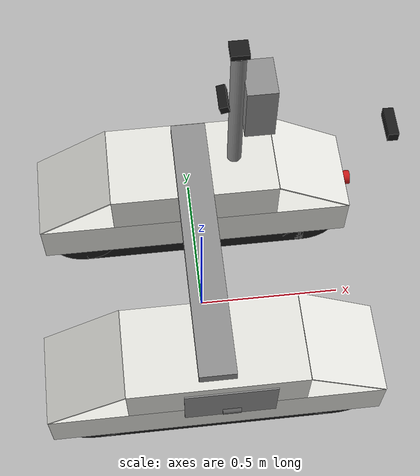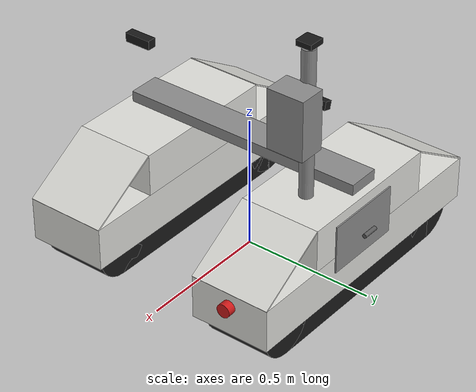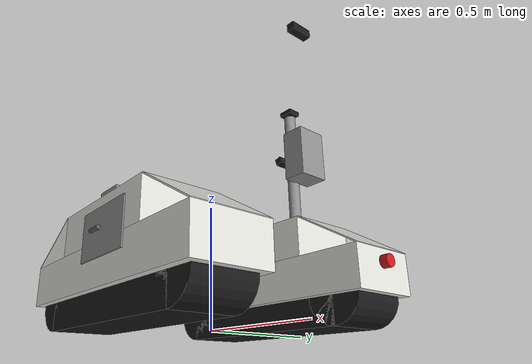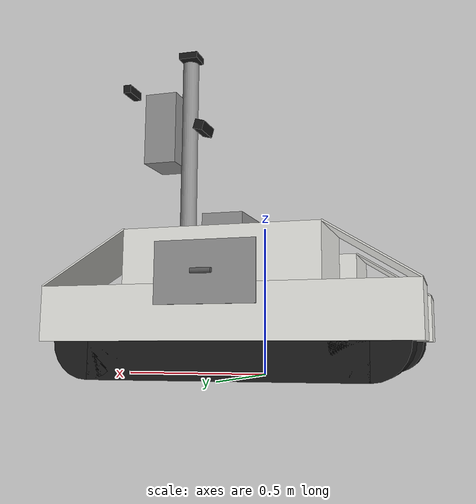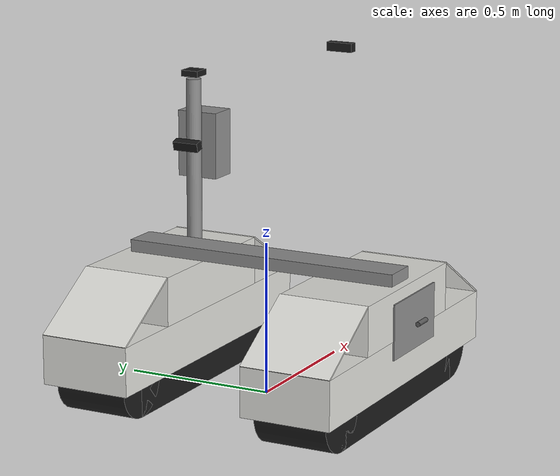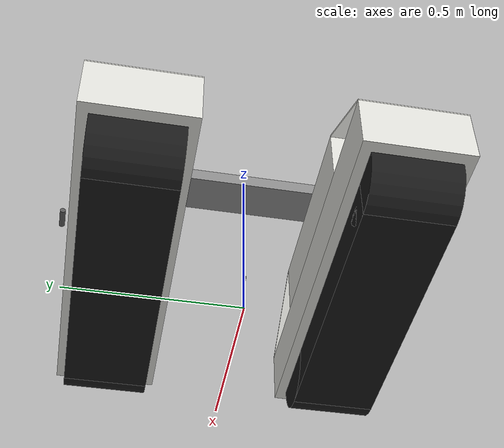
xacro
<?xml version="1.0"?>
<robot xmlns:xacro="http://www.ros.org/wiki/xacro" name="amiga_ng">

  <!-- ── Track / chassis dimensions (RTU.V4) ── -->
  <xacro:property name="track_length"   value="1.035"/>    <!-- ground contact length -->
  <xacro:property name="track_width"    value="0.242"/>    <!-- each track contact width -->
  <xacro:property name="track_height"   value="0.22"/>     <!-- track unit vertical extent -->
  <xacro:property name="drive_radius"   value="0.11"/>     <!-- track roller radius (drive frame) -->

  <!-- Track centre-to-centre spacing (body width minus one track width) -->
  <xacro:property name="track_sep"      value="0.698"/>
  <xacro:property name="track_half"     value="${track_sep/2}"/>

  <!-- base_link sits at the track roller axle height -->
  <xacro:property name="base_link_z"    value="${drive_radius}"/>

  <!-- ── Side body pods (two boxes, one above each track) ── -->
  <xacro:property name="pod_len"        value="1.10"/>
  <xacro:property name="pod_wid"        value="0.30"/>
  <xacro:property name="pod_h"          value="0.32"/>
  <!-- pod inner face roughly above the track; centre offset = track_half -->
  <xacro:property name="pod_y"          value="${track_half}"/>
  <!-- pod centre: body extends down so its base reaches the track axle centre
       (base_link z=0), giving the drive/idler axles something to attach to -->
  <xacro:property name="pod_z"          value="0.16"/>

  <!-- ── Transverse top frame joining the pods ── -->
  <xacro:property name="frame_wid"      value="0.94"/>
  <xacro:property name="frame_len"      value="0.12"/>
  <xacro:property name="frame_h"        value="0.04"/>

  <!-- ── Mast (vertical post carrying GPS / comms / e-stop) ── -->
  <xacro:property name="mast_h"         value="0.55"/>
  <xacro:property name="mast_r"         value="0.025"/>

  <!-- ── Materials ── -->
  <material name="amiga_green">  <color rgba="0.18 0.42 0.18 1.0"/> </material>
  <material name="white">        <color rgba="0.88 0.88 0.86 1.0"/> </material>
  <material name="black">        <color rgba="0.10 0.10 0.10 1.0"/> </material>
  <material name="grey">         <color rgba="0.55 0.55 0.55 1.0"/> </material>
  <material name="darkgrey">     <color rgba="0.35 0.35 0.35 1.0"/> </material>
  <material name="orange">       <color rgba="1.00 0.50 0.00 1.0"/> </material>
  <material name="red">          <color rgba="0.80 0.10 0.10 1.0"/> </material>

  <link name="base_footprint"/>

  <link name="base_link">
    <visual>
      <origin xyz="0 0 0" rpy="0 0 0"/>
      <geometry> <box size="0.01 0.01 0.01"/> </geometry>
      <material name="black"/>
    </visual>
    <inertial>
      <mass value="5.0"/>
      <inertia ixx="0.5" ixy="0" ixz="0" iyy="1.0" iyz="0" izz="1.0"/>
    </inertial>
  </link>

  <joint name="base_footprint_joint" type="fixed">
    <parent link="base_footprint"/>
    <child  link="base_link"/>
    <origin xyz="0 0 ${base_link_z}" rpy="0 0 0"/>
  </joint>

  <xacro:macro name="track" params="prefix y axis_y">
    <link name="${prefix}_track_link">
      <visual>
        <origin xyz="0 0 0" rpy="0 0 0"/>
        <geometry> <box size="${track_length - 2*drive_radius} ${track_width} ${track_height}"/> </geometry>
        <material name="black"/>
      </visual>
      <collision>
        <origin xyz="0 0 0" rpy="0 0 0"/>
        <geometry> <box size="${track_length - 2*drive_radius} ${track_width} ${track_height}"/> </geometry>
        <surface>
          <friction>
            <ode>
              <mu>0.7</mu>
              <mu2>150</mu2>
              <fdir1>0 1 0</fdir1>
              <slip1>0.0</slip1>
              <slip2>0.0</slip2>
            </ode>
          </friction>
        </surface>
      </collision>
      <inertial>
        <mass value="18.0"/>
        <inertia ixx="0.8" ixy="0" ixz="0" iyy="2.0" iyz="0" izz="2.0"/>
      </inertial>
    </link>
    <joint name="${prefix}_track_joint" type="fixed">
      <parent link="base_link"/>
      <child  link="${prefix}_track_link"/>
      <origin xyz="0 ${y} 0" rpy="0 0 0"/>
    </joint>

    <!-- Drive roller (front) — full track height; forms the rounded front end -->
    <link name="${prefix}_drive_link">
      <visual>
        <origin xyz="0 0 0" rpy="${pi/2} 0 0"/>
        <geometry> <cylinder radius="${track_height/2}" length="${track_width}"/> </geometry>
        <material name="black"/>
      </visual>
      <collision>
        <origin xyz="0 0 0" rpy="${pi/2} 0 0"/>
        <geometry> <cylinder radius="${track_height/2}" length="${track_width}"/> </geometry>
      </collision>
      <inertial>
        <mass value="4.0"/>
        <inertia ixx="0.05" ixy="0" ixz="0" iyy="0.05" iyz="0" izz="0.05"/>
      </inertial>
    </link>
    <joint name="${prefix}_drive_joint" type="continuous">
      <parent link="base_link"/>
      <child  link="${prefix}_drive_link"/>
      <origin xyz="${track_length/2 - drive_radius} ${y} 0" rpy="0 0 0"/>
      <axis xyz="0 ${axis_y} 0"/>
    </joint>

    <!-- Idler roller (rear) — full track height; forms the rounded rear end -->
    <link name="${prefix}_idler_link">
      <visual>
        <origin xyz="0 0 0" rpy="${pi/2} 0 0"/>
        <geometry> <cylinder radius="${track_height/2}" length="${track_width}"/> </geometry>
        <material name="black"/>
      </visual>
      <inertial>
        <mass value="4.0"/>
        <inertia ixx="0.05" ixy="0" ixz="0" iyy="0.05" iyz="0" izz="0.05"/>
      </inertial>
    </link>
    <joint name="${prefix}_idler_joint" type="continuous">
      <parent link="base_link"/>
      <child  link="${prefix}_idler_link"/>
      <origin xyz="-${track_length/2 - drive_radius} ${y} 0" rpy="0 0 0"/>
      <axis xyz="0 ${axis_y} 0"/>
    </joint>
  </xacro:macro>

  <xacro:track prefix="left"  y=" ${track_half}" axis_y=" 1"/>
  <xacro:track prefix="right" y="-${track_half}" axis_y="-1"/>

  <gazebo reference="left_track_joint">
    <preserveFixedJoint>true</preserveFixedJoint>
  </gazebo>
  <gazebo reference="right_track_joint">
    <preserveFixedJoint>true</preserveFixedJoint>
  </gazebo>

  <gazebo reference="left_track_link">
    <mu1>0.9</mu1>
    <mu2>0.9</mu2>
  </gazebo>
  <gazebo reference="right_track_link">
    <mu1>0.9</mu1>
    <mu2>0.9</mu2>
  </gazebo>

  <xacro:macro name="pod" params="prefix y face">
    <link name="${prefix}_pod_link">
      <!-- lower vertical box (full length) -->
      <visual>
        <origin xyz="0 0 -0.08" rpy="0 0 0"/>
        <geometry> <box size="${pod_len} ${pod_wid} 0.16"/> </geometry>
        <material name="white"/>
      </visual>
      <!-- upper central box (top length) -->
      <visual>
        <origin xyz="0 0 0.08" rpy="0 0 0"/>
        <geometry> <box size="0.58 ${pod_wid} 0.16"/> </geometry>
        <material name="white"/>
      </visual>
      <!-- front upper slant face (shoulder up to top) -->
      <visual>
        <origin xyz="0.42 0 0.08" rpy="0 0.5517 0"/>
        <geometry> <box size="0.3053 ${pod_wid} 0.005"/> </geometry>
        <material name="white"/>
      </visual>
      <!-- rear upper slant face -->
      <visual>
        <origin xyz="-0.42 0 0.08" rpy="0 -0.5517 0"/>
        <geometry> <box size="0.3053 ${pod_wid} 0.005"/> </geometry>
        <material name="white"/>
      </visual>

      <visual>
        <origin xyz="0.04 ${face} 0.03" rpy="0 0 0"/>
        <geometry> <box size="0.30 0.006 0.18"/> </geometry>
        <material name="grey"/>
      </visual>
      <!-- handle: small grab bar standing off the hatch -->
      <visual>
        <origin xyz="0.04 ${face*1.18} 0.03" rpy="0 1.5708 0"/>
        <geometry> <cylinder radius="0.008" length="0.06"/> </geometry>
        <material name="darkgrey"/>
      </visual>

      <!-- collision: simple full box (slant is visual only) -->
      <collision>
        <origin xyz="0 0 0" rpy="0 0 0"/>
        <geometry> <box size="${pod_len} ${pod_wid} ${pod_h}"/> </geometry>
      </collision>
      <inertial>
        <mass value="35.0"/>
        <inertia ixx="3.0" ixy="0" ixz="0" iyy="3.0" iyz="0" izz="3.0"/>
      </inertial>
    </link>
    <joint name="${prefix}_pod_joint" type="fixed">
      <parent link="base_link"/>
      <child  link="${prefix}_pod_link"/>
      <origin xyz="0 ${y} ${pod_z}" rpy="0 0 0"/>
    </joint>
  </xacro:macro>

  <xacro:pod prefix="left"  y=" ${pod_y}" face=" 0.152"/>
  <xacro:pod prefix="right" y="-${pod_y}" face="-0.152"/>

  <link name="top_frame">
    <visual>
      <origin xyz="0 0 0" rpy="0 0 0"/>
      <geometry> <box size="${frame_len} ${frame_wid} ${frame_h}"/> </geometry>
      <material name="grey"/>
    </visual>
    <collision>
      <origin xyz="0 0 0" rpy="0 0 0"/>
      <geometry> <box size="${frame_len} ${frame_wid} ${frame_h}"/> </geometry>
    </collision>
    <inertial>
      <mass value="4.0"/>
      <inertia ixx="0.3" ixy="0" ixz="0" iyy="0.05" iyz="0" izz="0.3"/>
    </inertial>
  </link>

  <joint name="top_frame_joint" type="fixed">
    <parent link="base_link"/>
    <child  link="top_frame"/>
    <origin xyz="0 0 ${pod_z + pod_h/2 + frame_h/2}" rpy="0 0 0"/>
  </joint>

  <link name="mast_link">
    <visual>
      <origin xyz="0 0 0" rpy="0 0 0"/>
      <geometry> <cylinder radius="${mast_r}" length="${mast_h}"/> </geometry>
      <material name="grey"/>
    </visual>
    <collision>
      <origin xyz="0 0 0" rpy="0 0 0"/>
      <geometry> <cylinder radius="${mast_r}" length="${mast_h}"/> </geometry>
    </collision>
    <inertial>
      <mass value="1.5"/>
      <inertia ixx="0.05" ixy="0" ixz="0" iyy="0.05" iyz="0" izz="0.001"/>
    </inertial>
  </link>

  <!-- Mast mounted on the LEFT pod, near the front corner (one side) -->
  <joint name="mast_joint" type="fixed">
    <parent link="left_pod_link"/>
    <child  link="mast_link"/>
    <origin xyz="0.15 0 ${pod_h/2 + mast_h/2}" rpy="0 0 0"/>
  </joint>

  <!-- Comms / control enclosure on the mast (the blue box in the drawing) -->
  <link name="comms_box">
    <visual>
      <origin xyz="0 0 0" rpy="0 0 0"/>
      <geometry> <box size="0.10 0.14 0.22"/> </geometry>
      <material name="grey"/>
    </visual>
    <inertial>
      <mass value="1.0"/>
      <inertia ixx="0.01" ixy="0" ixz="0" iyy="0.01" iyz="0" izz="0.01"/>
    </inertial>
  </link>
  <joint name="comms_box_joint" type="fixed">
    <parent link="mast_link"/>
    <child  link="comms_box"/>
    <origin xyz="0.07 0 0.05" rpy="0 0 0"/>
  </joint>

  <!-- E-stop button (red mushroom) on the front face -->
  <link name="estop_link">
    <visual>
      <origin xyz="0 0 0" rpy="0 ${pi/2} 0"/>
      <geometry> <cylinder radius="0.025" length="0.03"/> </geometry>
      <material name="red"/>
    </visual>
  </link>
  <joint name="estop_joint" type="fixed">
    <parent link="left_pod_link"/>
    <child  link="estop_link"/>
    <origin xyz="${pod_len/2 + 0.015} 0 -0.05" rpy="0 0 0"/>
  </joint>

  <!-- ══════════════════════════════════════════════════════════════
       GPS  (xyz="-0.343 0.273 1.016" rel base_link) — preserved
       ══════════════════════════════════════════════════════════════ -->
  <link name="gps_link">
    <visual>
      <geometry> <box size="0.06 0.06 0.02"/> </geometry>
      <material name="black"/>
    </visual>
    <inertial>
      <mass value="0.1"/>
      <inertia ixx="0.001" ixy="0" ixz="0" iyy="0.001" iyz="0" izz="0.001"/>
    </inertial>
  </link>

  <joint name="gps_joint" type="fixed">
    <parent link="mast_link"/>
    <child  link="gps_link"/>
    <origin xyz="0 0 ${mast_h/2 + 0.02}" rpy="0 0 0"/>
  </joint>

  <gazebo reference="gps_link">
    <sensor name="gps_sensor" type="navsat">
      <always_on>true</always_on>
      <update_rate>10.0</update_rate>
      <topic>gps</topic>
      <gz_frame_id>gps_link</gz_frame_id>
    </sensor>
  </gazebo>

  <!-- ══════════════════════════════════════════════════════════════
       IMU  (BNO085; xyz="-0.3 0 0" rel base_link) — preserved
       ══════════════════════════════════════════════════════════════ -->
  <link name="imu_link">
    <visual>
      <geometry> <box size="0.03 0.03 0.01"/> </geometry>
      <material name="black"/>
    </visual>
    <inertial>
      <mass value="0.05"/>
      <inertia ixx="0.0001" ixy="0" ixz="0" iyy="0.0001" iyz="0" izz="0.0001"/>
    </inertial>
  </link>

  <joint name="imu_joint" type="fixed">
    <parent link="mast_link"/>
    <child  link="imu_link"/>
    <origin xyz="${mast_r + 0.02} 0 0.0" rpy="0 0 0"/>
  </joint>

  <gazebo reference="imu_link">
    <sensor name="imu_sensor" type="imu">
      <always_on>true</always_on>
      <update_rate>100</update_rate>
      <topic>imu</topic>
      <gz_frame_id>imu_link</gz_frame_id>
      <imu>
        <angular_velocity/>
        <linear_acceleration/>
      </imu>
    </sensor>
  </gazebo>

  <!-- ══════════════════════════════════════════════════════════════
       LIDAR  (xyz="0 0.562 0.141"; use_lidar arg) — preserved
       ══════════════════════════════════════════════════════════════ -->
  <xacro:arg name="use_lidar" default="false"/>

  <xacro:if value="$(arg use_lidar)">
    <link name="lidar_link">
      <visual>
        <geometry> <cylinder radius="0.05" length="0.07"/> </geometry>
        <material name="black"/>
      </visual>
    </link>

    <joint name="lidar_joint" type="fixed">
      <parent link="base_link"/>
      <child  link="lidar_link"/>
      <origin xyz="0.000 0.562 0.141" rpy="0 0 0"/>
    </joint>

    <gazebo reference="lidar_link">
      <sensor name="lidar" type="gpu_lidar">
        <pose>0 0 0 0 0 0</pose>
        <topic>scan</topic>
        <gz_frame_id>lidar_link</gz_frame_id>
        <update_rate>10</update_rate>
        <visualize>false</visualize>
        <lidar>
          <scan>
            <horizontal>
              <samples>360</samples>
              <min_angle>-3.14159</min_angle>
              <max_angle> 3.14159</max_angle>
            </horizontal>
          </scan>
          <range>
            <min>0.4</min>
            <max>20.0</max>
          </range>
        </lidar>
      </sensor>
    </gazebo>
  </xacro:if>

  <!-- ══════════════════════════════════════════════════════════════
       OAK-D CAMERAS  (front + rear; visual only) — preserved
       ══════════════════════════════════════════════════════════════ -->
  <xacro:macro name="oak_camera" params="name xyz rpy">
    <link name="${name}_link">
      <visual>
        <origin xyz="0 0 0" rpy="0 0 0"/>
        <geometry> <box size="0.03 0.09 0.03"/> </geometry>
        <material name="black"/>
      </visual>
    </link>
    <joint name="${name}_joint" type="fixed">
      <parent link="mast_link"/>
      <child  link="${name}_link"/>
      <origin xyz="${xyz}" rpy="${rpy}"/>
    </joint>
  </xacro:macro>

  <!-- Front camera: mast front face, upper; rear camera: just below, facing back -->
  <xacro:oak_camera name="oak0"
    xyz="${mast_r + 0.02} 0  0.12"
    rpy="0 0.2618 0"/>
  <xacro:oak_camera name="oak1"
    xyz="-${mast_r + 0.02} 0  0.06"
    rpy="0 0.2618 ${pi}"/>

  <link name="camera_link">
    <visual>
      <origin xyz="0 0 0" rpy="0 0 0"/>
      <geometry> <box size="0.03 0.09 0.03"/> </geometry>
      <material name="black"/>
    </visual>
    <inertial>
      <mass value="0.1"/>
      <inertia ixx="0.001" ixy="0" ixz="0" iyy="0.001" iyz="0" izz="0.001"/>
    </inertial>
  </link>

  <joint name="camera_joint" type="fixed">
    <parent link="base_link"/>
    <child  link="camera_link"/>
    <origin xyz="${pod_len/2 - 0.02} 0 ${1.055 - base_link_z}" rpy="0 0 0"/>
  </joint>

  <xacro:arg name="use_camera"    default="true"/>
  <xacro:arg name="camera_width"  default="320"/>
  <xacro:arg name="camera_height" default="240"/>
  <xacro:arg name="camera_rate"   default="10"/>
  <xacro:if value="$(arg use_camera)">
  <gazebo reference="camera_link">
    <sensor name="camera_sensor" type="camera">
      <always_on>true</always_on>
      <update_rate>$(arg camera_rate)</update_rate>
      <topic>camera</topic>
      <gz_frame_id>camera_link</gz_frame_id>
      <pose>0 0 0 0 0.35 0</pose>
      <camera>
        <horizontal_fov>1.047</horizontal_fov>
        <image>
          <width>$(arg camera_width)</width>
          <height>$(arg camera_height)</height>
          <format>R8G8B8</format>
        </image>
        <clip>
          <near>0.1</near>
          <far>100</far>
        </clip>
      </camera>
    </sensor>
  </gazebo>
  </xacro:if>

  <gazebo>
    <plugin filename="gz-sim-tracked-vehicle-system"
            name="gz::sim::systems::TrackedVehicle">
      <left_track><link>left_track_link</link></left_track>
      <right_track><link>right_track_link</link></right_track>

      <tracks_separation>${track_sep}</tracks_separation>
      <tracks_height>${drive_radius}</tracks_height>
      <steering_efficiency>0.5</steering_efficiency>

      <!-- Explicit global topic; without this the plugin defaults to
           /model/{entity_name}/cmd_vel which the bridge does not route. -->
      <topic>/cmd_vel</topic>
    </plugin>
  </gazebo>

  <!-- TrackController: one per side; listens on
       /model/amiga_ng/link/left_track_link/track_cmd_vel  (default) -->
  <gazebo>
    <plugin filename="gz-sim-track-controller-system"
            name="gz::sim::systems::TrackController">
      <link>left_track_link</link>
      <min_velocity>-1.5</min_velocity>
      <max_velocity>1.5</max_velocity>
    </plugin>
  </gazebo>

  <gazebo>
    <plugin filename="gz-sim-track-controller-system"
            name="gz::sim::systems::TrackController">
      <link>right_track_link</link>
      <min_velocity>-1.5</min_velocity>
      <max_velocity>1.5</max_velocity>
    </plugin>
  </gazebo>

  <gazebo>
    <plugin filename="gz-sim-diff-drive-system"
            name="gz::sim::systems::DiffDrive">
      <left_joint>left_drive_joint</left_joint>
      <right_joint>right_drive_joint</right_joint>

      <wheel_separation>${track_sep}</wheel_separation>
      <wheel_radius>${drive_radius}</wheel_radius>

      <topic>_unused_diffdrive_cmd_vel</topic>

      <odom_topic>odom</odom_topic>
      <frame_id>odom</frame_id>
      <child_frame_id>base_link</child_frame_id>
      <odom_publish_frequency>50</odom_publish_frequency>
      <publish_tf>false</publish_tf>
    </plugin>
  </gazebo>

  <!-- ══════════════════════════════════════════════════════════════
       JOINT STATE PUBLISHER PLUGIN
       ══════════════════════════════════════════════════════════════ -->
  <gazebo>
    <plugin filename="gz-sim-joint-state-publisher-system"
            name="gz::sim::systems::JointStatePublisher">
      <topic>joint_states</topic>
      <joint_name>left_drive_joint</joint_name>
      <joint_name>right_drive_joint</joint_name>
      <joint_name>left_idler_joint</joint_name>
      <joint_name>right_idler_joint</joint_name>
    </plugin>
  </gazebo>

  <!-- ══════════════════════════════════════════════════════════════
       WORLD-LEVEL SENSOR / IMU / NAVSAT SYSTEM PLUGINS
       ══════════════════════════════════════════════════════════════ -->
  <gazebo>
    <plugin filename="gz-sim-sensors-system"
            name="gz::sim::systems::Sensors">
      <render_engine>ogre2</render_engine>
    </plugin>
  </gazebo>

  <gazebo>
    <plugin filename="gz-sim-imu-system"
            name="gz::sim::systems::Imu"/>
  </gazebo>

  <gazebo>
    <plugin filename="gz-sim-navsat-system"
            name="gz::sim::systems::NavSat"/>
  </gazebo>

</robot>
